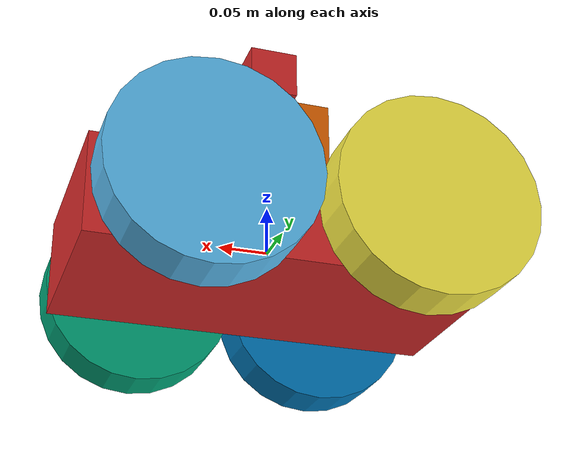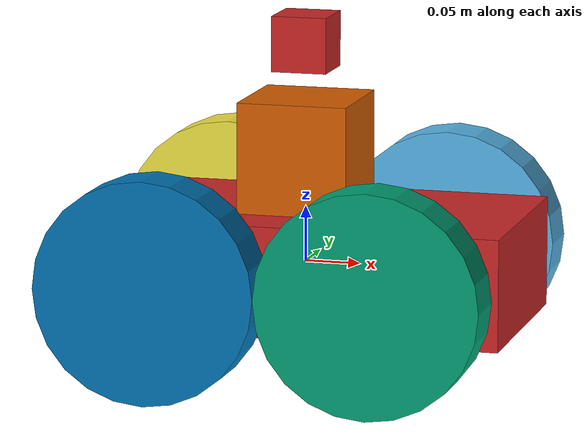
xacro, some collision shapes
<?xml version='1.0'?>

<robot name="bot" xmlns:xacro="http://www.ros.org/wiki/xacro">
<xacro:include filename="$(find my_bot)/models/bot.gazebo" />

<!--xacro:property name="width" value="0.2" /  ${width}-->
<xacro:property name="width" value="0.2" />
<xacro:property name="camera_link" value="0.05" /> <!-- Size of square 'camera' box -->
<!-- CHASSIS -->

  <link name="chassis">
    <pose>0 0 0 0 0 0</pose>
    <inertial>
      <mass value="10.0"/>
      <origin xyz="0.0 0 0" rpy=" 0 0 0"/>
      <inertia
          ixx="0.09" ixy="0" ixz="0"
          iyy="0.09" iyz="0"
          izz="0.09"
      />
    </inertial>

    <collision name='collision'>
      <geometry>
	      <box size=".4 ${width} .1"/>
      </geometry>
    </collision>

    <visual name='chassis_visual'>
      <origin xyz="0 0 0" rpy=" 0 0 0"/>
      <geometry>
        <box size=".4 .2 .1"/>
      </geometry>
    </visual>

 </link>

<!-- WHEEL LINKS -->

  <link name="left_wheel">

    <collision name="collision">
      <origin xyz="0 0 0" rpy="0 1.5707 1.5707"/>
      <geometry>
        <cylinder radius="0.1" length="0.05"/>
      </geometry>
    </collision>
    <visual name="left_wheel_visual">
      <origin xyz="0 0 0" rpy="0 1.5707 1.5707"/>
      <geometry>
        <cylinder radius="0.1" length="0.05"/>
      </geometry>
    </visual>
    <inertial>
      <origin xyz="0 0 0" rpy="0 1.5707 1.5707"/>
      <mass value="5"/>
      <cylinder_inertia m="5" r="0.1" h="0.05"/>
      <inertia
        ixx="0.013" ixy="0.0" ixz="0.0"
        iyy="0.013" iyz="0.0"
        izz="0.013"/>
    </inertial>
  </link>

  <link name="right_wheel">

    <collision name="collision">
      <origin xyz="0 0 0" rpy="0 1.5707 1.5707"/>
      <geometry>
        <cylinder radius="0.1" length="0.05"/>
      </geometry>
    </collision>
    <visual name="right_wheel_visual">
      <origin xyz="0 0 0" rpy="0 1.5707 1.5707"/>
      <geometry>
        <cylinder radius="0.1" length="0.05"/>
      </geometry>
    </visual>
    <inertial>
      <origin xyz="0 0 0" rpy="0 1.5707 1.5707"/>
      <mass value="5"/>
      <cylinder_inertia m="5" r="0.1" h="0.05"/>
      <inertia
        ixx="0.013" ixy="0.0" ixz="0.0"
        iyy="0.013" iyz="0.0"
        izz="0.013"/>
    </inertial>
  </link>

  <link name="left_fwheel">

    <collision name="collision">
      <origin xyz="0 0 0" rpy="0 1.5707 1.5707"/>
      <geometry>
        <cylinder radius="0.1" length="0.05"/>
      </geometry>
    </collision>
    <visual name="left_wheel_fvisual">
      <origin xyz="0 0 0" rpy="0 1.5707 1.5707"/>
      <geometry>
        <cylinder radius="0.1" length="0.05"/>
      </geometry>
    </visual>
    <inertial>
      <origin xyz="0 0 0" rpy="0 1.5707 1.5707"/>
      <mass value="5"/>
      <cylinder_inertia m="5" r="0.1" h="0.05"/>
      <inertia
        ixx="0.013" ixy="0.0" ixz="0.0"
        iyy="0.013" iyz="0.0"
        izz="0.013"/>
    </inertial>
  </link>

  <link name="right_fwheel">

    <collision name="collision">
      <origin xyz="0 0 0" rpy="0 1.5707 1.5707"/>
      <geometry>
        <cylinder radius="0.1" length="0.05"/>
      </geometry>
    </collision>
    <visual name="right_wheel_fvisual">
      <origin xyz="0 0 0" rpy="0 1.5707 1.5707"/>
      <geometry>
        <cylinder radius="0.1" length="0.05"/>
      </geometry>
    </visual>
    <inertial>
      <origin xyz="0 0 0" rpy="0 1.5707 1.5707"/>
      <mass value="5"/>
      <cylinder_inertia m="5" r="0.1" h="0.05"/>
      <inertia
        ixx="0.013" ixy="0.0" ixz="0.0"
        iyy="0.013" iyz="0.0"
        izz="0.013"/>
    </inertial>
  </link>

<!-- WHEEL JOINTS -->

  <joint type="continuous" name="left_wheel_hinge">
    <origin xyz="0.1 0.15 0" rpy="0 0 0"/>
    <child link="left_wheel"/>
    <parent link="chassis"/>
    <axis xyz="0 1 0" rpy="0 0 0"/>
    <limit effort="100" velocity="100"/>
    <joint_properties damping="0.0" friction="1.0"/>
  </joint>

  <joint type="continuous" name="right_wheel_hinge">
    <origin xyz="0.1 -0.15 0" rpy="0 0 0"/>
    <child link="right_wheel"/>
    <parent link="chassis"/>
    <axis xyz="0 1 0" rpy="0 0 0"/>
    <limit effort="100" velocity="100"/>
    <joint_properties damping="0.0" friction="1.0"/>
  </joint>

 <joint type="continuous" name="left_wheel_fhinge">
    <origin xyz="-0.11 0.15 0" rpy="0 0 0"/>
    <child link="left_fwheel"/>
    <parent link="chassis"/>
    <axis xyz="0 1 0" rpy="0 0 0"/>
    <limit effort="100" velocity="100"/>
    <joint_properties damping="0.0" friction="1.0"/>
  </joint>

  <joint type="continuous" name="right_wheel_fhinge">
    <origin xyz="-0.1 -0.15 0" rpy="0 0 0"/>
    <child link="right_fwheel"/>
    <parent link="chassis"/>
    <axis xyz="0 1 0" rpy="0 0 0"/>
    <limit effort="100" velocity="100"/>
    <joint_properties damping="0.0" friction="1"/>
  </joint>

  <joint name="hokuyo_joint" type="fixed">
    <axis xyz="0 1 0" />
    <origin xyz="0 0 0.1" rpy="0 0 0"/>
    <parent link="chassis"/>
    <child link="hokuyo_link"/>
  </joint>

  <link name="hokuyo_link">
    <collision>
      <origin xyz="0 0 0" rpy="0 0 0"/>
      <geometry>
         <box size="0.1 0.1 0.1"/>
      </geometry>
    </collision>

    <visual>
      <origin xyz="0 0 0" rpy="0 0 0"/>
      <geometry>
        <mesh filename="package://my_bot/meshes/hokuyo.dae"/>
      </geometry>
    </visual>

    <inertial>
      <mass value="1e-5" />
      <origin xyz="0 0 0" rpy="0 0 0"/>
      <inertia ixx="1e-6" ixy="0" ixz="0" iyy="1e-6" iyz="0" izz="1e-6" />
    </inertial>
  </link>

<joint name="camera_joint" type="fixed">
  <axis xyz="0 1 0" />
  <origin xyz="0 0 0.2" rpy="0 0 0"/>
  <parent link="chassis"/>
  <child link="camera_link"/>
</joint>

<!-- Camera -->
<link name="camera_link">
  <collision>
    <origin xyz="0 0 0" rpy="0 0 0"/>
    <geometry>
  <box size="${camera_link} ${camera_link} ${camera_link}"/>
    </geometry>
  </collision>

  <visual>
    <origin xyz="0 0 0" rpy="0 0 0"/>
    <geometry>
  <box size="${camera_link} ${camera_link} ${camera_link}"/>
    </geometry>
    <material name="red"/>
  </visual>

  <inertial>
    <mass value="1e-5" />
    <origin xyz="0 0 0" rpy="0 0 0"/>
    <inertia ixx="1e-6" ixy="0" ixz="0" iyy="1e-6" iyz="0" izz="1e-6" />
  </inertial>
</link>

<!-- END -->

</robot>
